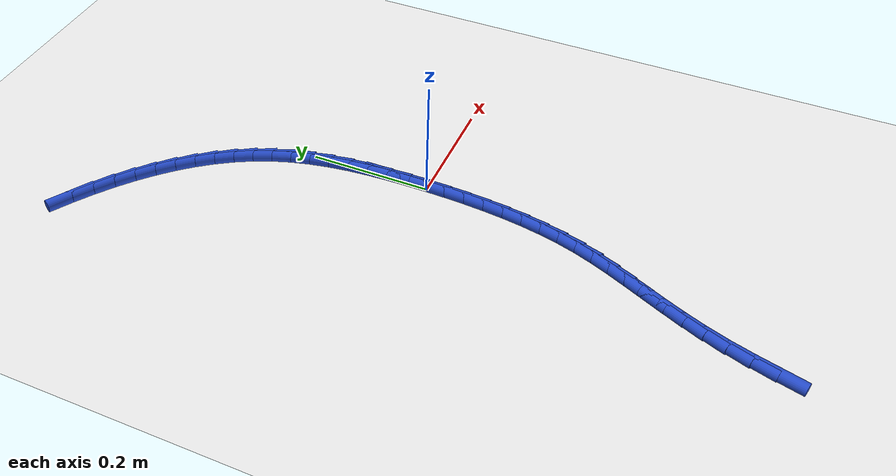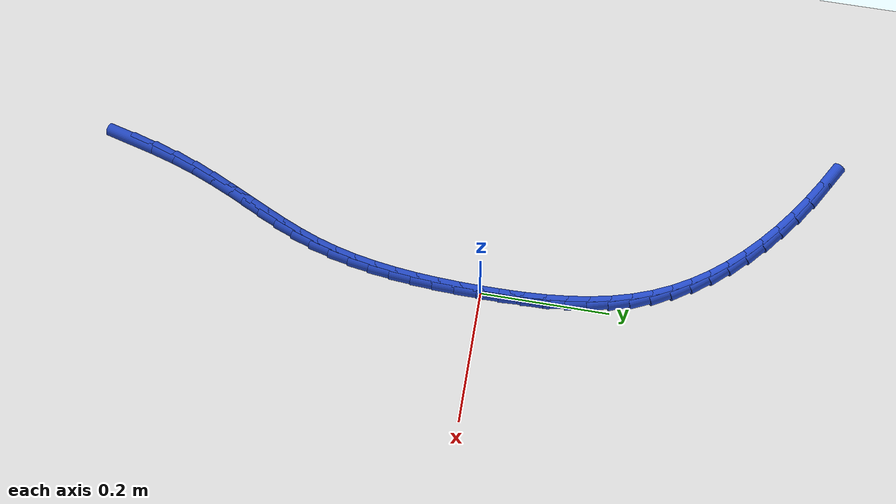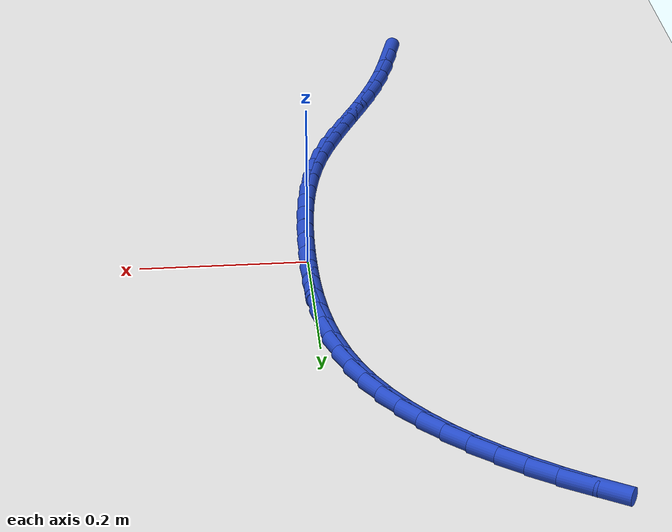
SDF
<sdf version="1.6">
 <world name="default">
  <model name="ground_plane">
   <static>1</static>
   <link name="link">
    <collision name="collision">
     <geometry><plane><normal>0 0 1</normal><size>100 100</size></plane></geometry>
     <surface><friction><ode><mu>100</mu><mu2>50</mu2></ode></friction></surface>
    </collision>
    <visual name="visual">
     <cast_shadows>0</cast_shadows>
     <geometry><plane><normal>0 0 1</normal><size>100 100</size></plane></geometry>
     <material>
      <script><uri>file://media/materials/scripts/gazebo.material</uri><name>Gazebo/WhiteGlow</name></script>
     </material>
    </visual>
   </link>
  </model>
  <model name="line">
   <link name="link_0">
    <pose>1.3010426069826053e-18 6.938893903907228e-18 0.01 0 1.57 1.5681028280128086</pose>
    <collision name="collision">
     <geometry><cylinder><radius>0.01</radius><length>0.08</length></cylinder></geometry>
    </collision>
    <visual name="visual">
     <material>
      <script><name>Gazebo/Blue</name><uri>file://media/materials/scripts/gazebo.material</uri></script>
     </material>
     <geometry><cylinder><radius>0.01</radius><length>0.08</length></cylinder></geometry>
    </visual>
   </link>
   <link name="link_1">
    <pose>9.21472946045387e-05 0.03421092015200379 0.01 0 1.57 -1.5492088396381607</pose>
    <collision name="collision">
     <geometry><cylinder><radius>0.01</radius><length>0.08</length></cylinder></geometry>
    </collision>
    <visual name="visual">
     <material>
      <script><name>Gazebo/Blue</name><uri>file://media/materials/scripts/gazebo.material</uri></script>
     </material>
     <geometry><cylinder><radius>0.01</radius><length>0.08</length></cylinder></geometry>
    </visual>
   </link>
   <link name="link_2">
    <pose>-0.00064412734055062 0.06831216840997371 0.01 0 1.57 -1.5178051882876995</pose>
    <collision name="collision">
     <geometry><cylinder><radius>0.01</radius><length>0.08</length></cylinder></geometry>
    </collision>
    <visual name="visual">
     <material>
      <script><name>Gazebo/Blue</name><uri>file://media/materials/scripts/gazebo.material</uri></script>
     </material>
     <geometry><cylinder><radius>0.01</radius><length>0.08</length></cylinder></geometry>
    </visual>
   </link>
   <link name="link_3">
    <pose>-0.002438990591156166 0.10215146603923764 0.01 0 1.57 -1.4788020552186834</pose>
    <collision name="collision">
     <geometry><cylinder><radius>0.01</radius><length>0.08</length></cylinder></geometry>
    </collision>
    <visual name="visual">
     <material>
      <script><name>Gazebo/Blue</name><uri>file://media/materials/scripts/gazebo.material</uri></script>
     </material>
     <geometry><cylinder><radius>0.01</radius><length>0.08</length></cylinder></geometry>
    </visual>
   </link>
   <link name="link_4">
    <pose>-0.005522609142902789 0.1355765343051234 0.01 0 1.57 -1.431630477514693</pose>
    <collision name="collision">
     <geometry><cylinder><radius>0.01</radius><length>0.08</length></cylinder></geometry>
    </collision>
    <visual name="visual">
     <material>
      <script><name>Gazebo/Blue</name><uri>file://media/materials/scripts/gazebo.material</uri></script>
     </material>
     <geometry><cylinder><radius>0.01</radius><length>0.08</length></cylinder></geometry>
    </visual>
   </link>
   <link name="link_5">
    <pose>-0.010125149681481184 0.1684350944729589 0.01 0 1.57 -1.3756852654955114</pose>
    <collision name="collision">
     <geometry><cylinder><radius>0.01</radius><length>0.08</length></cylinder></geometry>
    </collision>
    <visual name="visual">
     <material>
      <script><name>Gazebo/Blue</name><uri>file://media/materials/scripts/gazebo.material</uri></script>
     </material>
     <geometry><cylinder><radius>0.01</radius><length>0.08</length></cylinder></geometry>
    </visual>
   </link>
   <link name="link_6">
    <pose>-0.016476778892582047 0.20057486780807193 0.01 0 1.57 -1.3104160144874581</pose>
    <collision name="collision">
     <geometry><cylinder><radius>0.01</radius><length>0.08</length></cylinder></geometry>
    </collision>
    <visual name="visual">
     <material>
      <script><name>Gazebo/Blue</name><uri>file://media/materials/scripts/gazebo.material</uri></script>
     </material>
     <geometry><cylinder><radius>0.01</radius><length>0.08</length></cylinder></geometry>
    </visual>
   </link>
   <link name="link_7">
    <pose>-0.02480766346189605 0.23184357557579025 0.01 0 1.57 -1.2354670256560256</pose>
    <collision name="collision">
     <geometry><cylinder><radius>0.01</radius><length>0.08</length></cylinder></geometry>
    </collision>
    <visual name="visual">
     <material>
      <script><name>Gazebo/Blue</name><uri>file://media/materials/scripts/gazebo.material</uri></script>
     </material>
     <geometry><cylinder><radius>0.01</radius><length>0.08</length></cylinder></geometry>
    </visual>
   </link>
   <link name="link_8">
    <pose>-0.03534789462071178 0.26208897743912496 0.01 0 1.57 -1.1535806220860858</pose>
    <collision name="collision">
     <geometry><cylinder><radius>0.01</radius><length>0.08</length></cylinder></geometry>
    </collision>
    <visual name="visual">
     <material>
      <script><name>Gazebo/Blue</name><uri>file://media/materials/scripts/gazebo.material</uri></script>
     </material>
     <geometry><cylinder><radius>0.01</radius><length>0.08</length></cylinder></geometry>
    </visual>
   </link>
   <link name="link_9">
    <pose>-0.04825018677093553 0.29119820904033267 0.01 0 1.57 -1.0732351427596591</pose>
    <collision name="collision">
     <geometry><cylinder><radius>0.01</radius><length>0.08</length></cylinder></geometry>
    </collision>
    <visual name="visual">
     <material>
      <script><name>Gazebo/Blue</name><uri>file://media/materials/scripts/gazebo.material</uri></script>
     </material>
     <geometry><cylinder><radius>0.01</radius><length>0.08</length></cylinder></geometry>
    </visual>
   </link>
   <link name="link_10">
    <pose>-0.06344390718443564 0.31917206423210837 0.01 0 1.57 -0.9966311915711461</pose>
    <collision name="collision">
     <geometry><cylinder><radius>0.01</radius><length>0.08</length></cylinder></geometry>
    </collision>
    <visual name="visual">
     <material>
      <script><name>Gazebo/Blue</name><uri>file://media/materials/scripts/gazebo.material</uri></script>
     </material>
     <geometry><cylinder><radius>0.01</radius><length>0.08</length></cylinder></geometry>
    </visual>
   </link>
   <link name="link_11">
    <pose>-0.08081836350786925 0.34603172264650145 0.01 0 1.57 -0.9243331726295042</pose>
    <collision name="collision">
     <geometry><cylinder><radius>0.01</radius><length>0.08</length></cylinder></geometry>
    </collision>
    <visual name="visual">
     <material>
      <script><name>Gazebo/Blue</name><uri>file://media/materials/scripts/gazebo.material</uri></script>
     </material>
     <geometry><cylinder><radius>0.01</radius><length>0.08</length></cylinder></geometry>
    </visual>
   </link>
   <link name="link_12">
    <pose>-0.10026286338789353 0.37179836391556115 0.01 0 1.57 -0.8566665985663992</pose>
    <collision name="collision">
     <geometry><cylinder><radius>0.01</radius><length>0.08</length></cylinder></geometry>
    </collision>
    <visual name="visual">
     <material>
      <script><name>Gazebo/Blue</name><uri>file://media/materials/scripts/gazebo.material</uri></script>
     </material>
     <geometry><cylinder><radius>0.01</radius><length>0.08</length></cylinder></geometry>
    </visual>
   </link>
   <link name="link_13">
    <pose>-0.12166671447116557 0.39649316767133636 0.01 0 1.57 -0.7937490112517714</pose>
    <collision name="collision">
     <geometry><cylinder><radius>0.01</radius><length>0.08</length></cylinder></geometry>
    </collision>
    <visual name="visual">
     <material>
      <script><name>Gazebo/Blue</name><uri>file://media/materials/scripts/gazebo.material</uri></script>
     </material>
     <geometry><cylinder><radius>0.01</radius><length>0.08</length></cylinder></geometry>
    </visual>
   </link>
   <link name="link_14">
    <pose>-0.14491922440434257 0.42013731354587663 0.01 0 1.57 -0.7355329787320553</pose>
    <collision name="collision">
     <geometry><cylinder><radius>0.01</radius><length>0.08</length></cylinder></geometry>
    </collision>
    <visual name="visual">
     <material>
      <script><name>Gazebo/Blue</name><uri>file://media/materials/scripts/gazebo.material</uri></script>
     </material>
     <geometry><cylinder><radius>0.01</radius><length>0.08</length></cylinder></geometry>
    </visual>
   </link>
   <link name="link_15">
    <pose>-0.16990970083408158 0.4427519811712309 0.01 0 1.57 -0.6818512623761129</pose>
    <collision name="collision">
     <geometry><cylinder><radius>0.01</radius><length>0.08</length></cylinder></geometry>
    </collision>
    <visual name="visual">
     <material>
      <script><name>Gazebo/Blue</name><uri>file://media/materials/scripts/gazebo.material</uri></script>
     </material>
     <geometry><cylinder><radius>0.01</radius><length>0.08</length></cylinder></geometry>
    </visual>
   </link>
   <link name="link_16">
    <pose>-0.19652745140703984 0.4643583501794485 0.01 0 1.57 -0.6324576854109352</pose>
    <collision name="collision">
     <geometry><cylinder><radius>0.01</radius><length>0.08</length></cylinder></geometry>
    </collision>
    <visual name="visual">
     <material>
      <script><name>Gazebo/Blue</name><uri>file://media/materials/scripts/gazebo.material</uri></script>
     </material>
     <geometry><cylinder><radius>0.01</radius><length>0.08</length></cylinder></geometry>
    </visual>
   </link>
   <link name="link_17">
    <pose>-0.2246617837698745 0.4849776002025788 0.01 0 1.57 -0.5870605718990818</pose>
    <collision name="collision">
     <geometry><cylinder><radius>0.01</radius><length>0.08</length></cylinder></geometry>
    </collision>
    <visual name="visual">
     <material>
      <script><name>Gazebo/Blue</name><uri>file://media/materials/scripts/gazebo.material</uri></script>
     </material>
     <geometry><cylinder><radius>0.01</radius><length>0.08</length></cylinder></geometry>
    </visual>
   </link>
   <link name="link_18">
    <pose>-0.2542020055692426 0.5046309108726706 0.01 0 1.57 -0.5453480602580567</pose>
    <collision name="collision">
     <geometry><cylinder><radius>0.01</radius><length>0.08</length></cylinder></geometry>
    </collision>
    <visual name="visual">
     <material>
      <script><name>Gazebo/Blue</name><uri>file://media/materials/scripts/gazebo.material</uri></script>
     </material>
     <geometry><cylinder><radius>0.01</radius><length>0.08</length></cylinder></geometry>
    </visual>
   </link>
   <link name="link_222">
    <pose>-0.15701841117998816 -0.5828970728700302 0.01 0 1.57 1.3201666463279067</pose>
    <collision name="collision">
     <geometry><cylinder><radius>0.01</radius><length>0.08</length></cylinder></geometry>
    </collision>
    <visual name="visual">
     <material>
      <script><name>Gazebo/Blue</name><uri>file://media/materials/scripts/gazebo.material</uri></script>
     </material>
     <geometry><cylinder><radius>0.01</radius><length>0.08</length></cylinder></geometry>
    </visual>
   </link>
   <link name="link_223">
    <pose>-0.1472111717003309 -0.5445894537194392 0.01 0 1.57 1.2870166050326577</pose>
    <collision name="collision">
     <geometry><cylinder><radius>0.01</radius><length>0.08</length></cylinder></geometry>
    </collision>
    <visual name="visual">
     <material>
      <script><name>Gazebo/Blue</name><uri>file://media/materials/scripts/gazebo.material</uri></script>
     </material>
     <geometry><cylinder><radius>0.01</radius><length>0.08</length></cylinder></geometry>
    </visual>
   </link>
   <link name="link_224">
    <pose>-0.13648632701392144 -0.5078165894025577 0.01 0 1.57 1.240431001538058</pose>
    <collision name="collision">
     <geometry><cylinder><radius>0.01</radius><length>0.08</length></cylinder></geometry>
    </collision>
    <visual name="visual">
     <material>
      <script><name>Gazebo/Blue</name><uri>file://media/materials/scripts/gazebo.material</uri></script>
     </material>
     <geometry><cylinder><radius>0.01</radius><length>0.08</length></cylinder></geometry>
    </visual>
   </link>
   <link name="link_225">
    <pose>-0.1245879059588203 -0.4731205484547792 0.01 0 1.57 1.1955263719553375</pose>
    <collision name="collision">
     <geometry><cylinder><radius>0.01</radius><length>0.08</length></cylinder></geometry>
    </collision>
    <visual name="visual">
     <material>
      <script><name>Gazebo/Blue</name><uri>file://media/materials/scripts/gazebo.material</uri></script>
     </material>
     <geometry><cylinder><radius>0.01</radius><length>0.08</length></cylinder></geometry>
    </visual>
   </link>
   <link name="link_226">
    <pose>-0.11169579036524926 -0.44039432557071284 0.01 0 1.57 1.1621029390181707</pose>
    <collision name="collision">
     <geometry><cylinder><radius>0.01</radius><length>0.08</length></cylinder></geometry>
    </collision>
    <visual name="visual">
     <material>
      <script><name>Gazebo/Blue</name><uri>file://media/materials/scripts/gazebo.material</uri></script>
     </material>
     <geometry><cylinder><radius>0.01</radius><length>0.08</length></cylinder></geometry>
    </visual>
   </link>
   <link name="link_227">
    <pose>-0.09819634004133593 -0.4092234276989447 0.01 0 1.57 1.142285080878739</pose>
    <collision name="collision">
     <geometry><cylinder><radius>0.01</radius><length>0.08</length></cylinder></geometry>
    </collision>
    <visual name="visual">
     <material>
      <script><name>Gazebo/Blue</name><uri>file://media/materials/scripts/gazebo.material</uri></script>
     </material>
     <geometry><cylinder><radius>0.01</radius><length>0.08</length></cylinder></geometry>
    </visual>
   </link>
   <link name="link_228">
    <pose>-0.08447715245301295 -0.37919151866361384 0.01 0 1.57 1.137714316628445</pose>
    <collision name="collision">
     <geometry><cylinder><radius>0.01</radius><length>0.08</length></cylinder></geometry>
    </collision>
    <visual name="visual">
     <material>
      <script><name>Gazebo/Blue</name><uri>file://media/materials/scripts/gazebo.material</uri></script>
     </material>
     <geometry><cylinder><radius>0.01</radius><length>0.08</length></cylinder></geometry>
    </visual>
   </link>
   <link name="link_229">
    <pose>-0.07092582506621294 -0.34988226228885916 0.01 0 1.57 1.1495335474030226</pose>
    <collision name="collision">
     <geometry><cylinder><radius>0.01</radius><length>0.08</length></cylinder></geometry>
    </collision>
    <visual name="visual">
     <material>
      <script><name>Gazebo/Blue</name><uri>file://media/materials/scripts/gazebo.material</uri></script>
     </material>
     <geometry><cylinder><radius>0.01</radius><length>0.08</length></cylinder></geometry>
    </visual>
   </link>
   <link name="link_230">
    <pose>-0.057929955346868275 -0.32087932239881917 0.01 0 1.57 1.178278099551233</pose>
    <collision name="collision">
     <geometry><cylinder><radius>0.01</radius><length>0.08</length></cylinder></geometry>
    </collision>
    <visual name="visual">
     <material>
      <script><name>Gazebo/Blue</name><uri>file://media/materials/scripts/gazebo.material</uri></script>
     </material>
     <geometry><cylinder><radius>0.01</radius><length>0.08</length></cylinder></geometry>
    </visual>
   </link>
   <link name="link_231">
    <pose>-0.04587714076091232 -0.29176636281763463 0.01 0 1.57 1.2236882244236869</pose>
    <collision name="collision">
     <geometry><cylinder><radius>0.01</radius><length>0.08</length></cylinder></geometry>
    </collision>
    <visual name="visual">
     <material>
      <script><name>Gazebo/Blue</name><uri>file://media/materials/scripts/gazebo.material</uri></script>
     </material>
     <geometry><cylinder><radius>0.01</radius><length>0.08</length></cylinder></geometry>
    </visual>
   </link>
   <link name="link_232">
    <pose>-0.035154978774277354 -0.2621270473694435 0.01 0 1.57 1.2820145363802609</pose>
    <collision name="collision">
     <geometry><cylinder><radius>0.01</radius><length>0.08</length></cylinder></geometry>
    </collision>
    <visual name="visual">
     <material>
      <script><name>Gazebo/Blue</name><uri>file://media/materials/scripts/gazebo.material</uri></script>
     </material>
     <geometry><cylinder><radius>0.01</radius><length>0.08</length></cylinder></geometry>
    </visual>
   </link>
   <link name="link_233">
    <pose>-0.02608819692558496 -0.23160805876012802 0.01 0 1.57 1.3382331479283283</pose>
    <collision name="collision">
     <geometry><cylinder><radius>0.01</radius><length>0.08</length></cylinder></geometry>
    </collision>
    <visual name="visual">
     <material>
      <script><name>Gazebo/Blue</name><uri>file://media/materials/scripts/gazebo.material</uri></script>
     </material>
     <geometry><cylinder><radius>0.01</radius><length>0.08</length></cylinder></geometry>
    </visual>
   </link>
   <link name="link_234">
    <pose>-0.018650999807807555 -0.20020743311690872 0.01 0 1.57 1.3877208436524708</pose>
    <collision name="collision">
     <geometry><cylinder><radius>0.01</radius><length>0.08</length></cylinder></geometry>
    </collision>
    <visual name="visual">
     <material>
      <script><name>Gazebo/Blue</name><uri>file://media/materials/scripts/gazebo.material</uri></script>
     </material>
     <geometry><cylinder><radius>0.01</radius><length>0.08</length></cylinder></geometry>
    </visual>
   </link>
   <link name="link_235">
    <pose>-0.012696156138939225 -0.16804493015365413 0.01 0 1.57 1.4308869738859071</pose>
    <collision name="collision">
     <geometry><cylinder><radius>0.01</radius><length>0.08</length></cylinder></geometry>
    </collision>
    <visual name="visual">
     <material>
      <script><name>Gazebo/Blue</name><uri>file://media/materials/scripts/gazebo.material</uri></script>
     </material>
     <geometry><cylinder><radius>0.01</radius><length>0.08</length></cylinder></geometry>
    </visual>
   </link>
   <link name="link_236">
    <pose>-0.008076316218173299 -0.13524042828359706 0.01 0 1.57 1.4681718139715572</pose>
    <collision name="collision">
     <geometry><cylinder><radius>0.01</radius><length>0.08</length></cylinder></geometry>
    </collision>
    <visual name="visual">
     <material>
      <script><name>Gazebo/Blue</name><uri>file://media/materials/scripts/gazebo.material</uri></script>
     </material>
     <geometry><cylinder><radius>0.01</radius><length>0.08</length></cylinder></geometry>
    </visual>
   </link>
   <link name="link_237">
    <pose>-0.004644130344703095 -0.10191380591997039 0.01 0 1.57 1.4999998714859293</pose>
    <collision name="collision">
     <geometry><cylinder><radius>0.01</radius><length>0.08</length></cylinder></geometry>
    </collision>
    <visual name="visual">
     <material>
      <script><name>Gazebo/Blue</name><uri>file://media/materials/scripts/gazebo.material</uri></script>
     </material>
     <geometry><cylinder><radius>0.01</radius><length>0.08</length></cylinder></geometry>
    </visual>
   </link>
   <link name="link_238">
    <pose>-0.0022522488177218803 -0.06818494147600603 0.01 0 1.57 1.5267532963387136</pose>
    <collision name="collision">
     <geometry><cylinder><radius>0.01</radius><length>0.08</length></cylinder></geometry>
    </collision>
    <visual name="visual">
     <material>
      <script><name>Gazebo/Blue</name><uri>file://media/materials/scripts/gazebo.material</uri></script>
     </material>
     <geometry><cylinder><radius>0.01</radius><length>0.08</length></cylinder></geometry>
    </visual>
   </link>
   <link name="link_239">
    <pose>-0.0007533219364231 -0.03417371336493857 0.01 0 1.57 1.54875599589855</pose>
    <collision name="collision">
     <geometry><cylinder><radius>0.01</radius><length>0.08</length></cylinder></geometry>
    </collision>
    <visual name="visual">
     <material>
      <script><name>Gazebo/Blue</name><uri>file://media/materials/scripts/gazebo.material</uri></script>
     </material>
     <geometry><cylinder><radius>0.01</radius><length>0.08</length></cylinder></geometry>
    </visual>
   </link>
   <link name="link_240">
    <pose>-1.0842021724855044e-18 0.0 0.01 0 1.57 1.5662644066521432</pose>
    <collision name="collision">
     <geometry><cylinder><radius>0.01</radius><length>0.08</length></cylinder></geometry>
    </collision>
    <visual name="visual">
     <material>
      <script><name>Gazebo/Blue</name><uri>file://media/materials/scripts/gazebo.material</uri></script>
     </material>
     <geometry><cylinder><radius>0.01</radius><length>0.08</length></cylinder></geometry>
    </visual>
   </link>
   <link name="link_241">
    <pose>0.00015506669235409824 0.03421632020557688 0.01 0 1.57 -1.5621308408541097</pose>
    <collision name="collision">
     <geometry><cylinder><radius>0.01</radius><length>0.08</length></cylinder></geometry>
    </collision>
    <visual name="visual">
     <material>
      <script><name>Gazebo/Blue</name><uri>file://media/materials/scripts/gazebo.material</uri></script>
     </material>
     <geometry><cylinder><radius>0.01</radius><length>0.08</length></cylinder></geometry>
    </visual>
   </link>
   <link name="link_242">
    <pose>-0.0001407721585541229 0.06835536883855925 0.01 0 1.57 -1.5687369134388949</pose>
    <collision name="collision">
     <geometry><cylinder><radius>0.01</radius><length>0.08</length></cylinder></geometry>
    </collision>
    <visual name="visual">
     <material>
      <script><name>Gazebo/Blue</name><uri>file://media/materials/scripts/gazebo.material</uri></script>
     </material>
     <geometry><cylinder><radius>0.01</radius><length>0.08</length></cylinder></geometry>
    </visual>
   </link>
  </model>
 </world>
</sdf>
